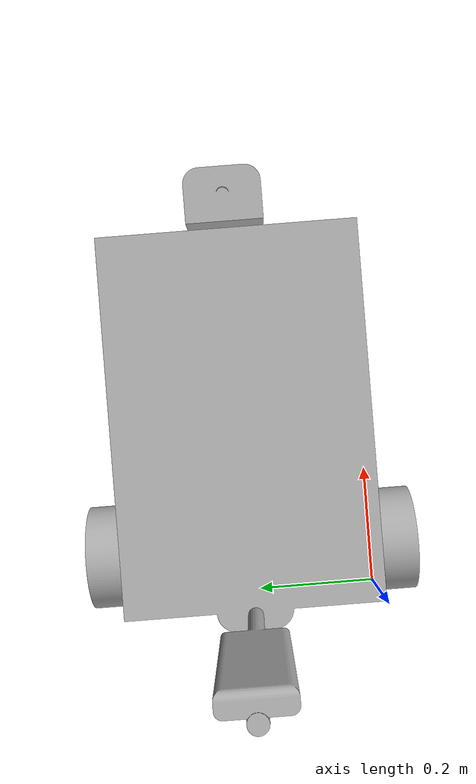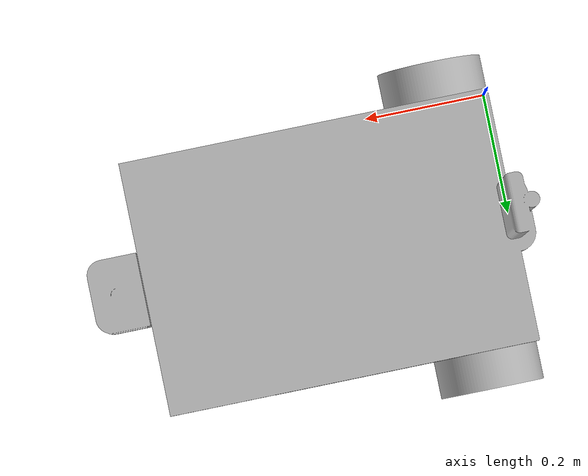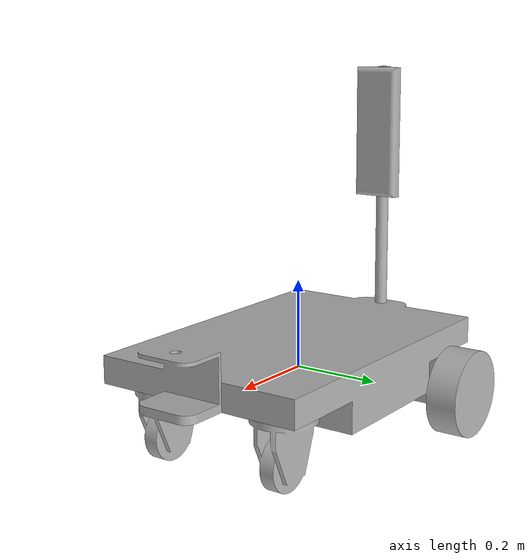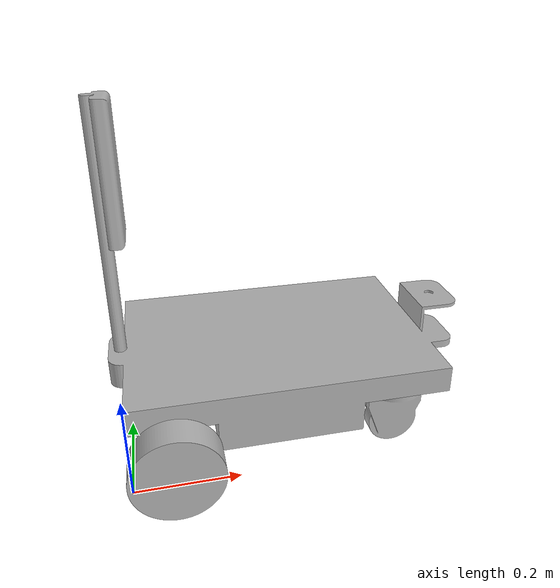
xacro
<?xml version="1.0"?>
<robot xmlns:xacro="http://www.ros.org/wiki/xacro" >

    <xacro:include filename="$(find agv_lince)/description/robot.trans" />
    <xacro:include filename="$(find agv_lince)/description/robot.gazebo" />

    <!-- MATERIALS -->
    <material name="silver">
        <color rgba="0.700 0.700 0.700 1.000"/>
    </material>

    <!-- BASE LINK -->
    <link name="base_link">

    </link>

    <!-- CHASSIS LINK -->
    <joint name="chassi_joint" type="fixed">
        <origin rpy="0 0 0" xyz="0 0 0"/>
        <parent link="base_link"/>
        <child link="chassi"/>
    </joint>

    <link name="chassi">
        <inertial>
            <origin xyz="0.26852392239431533 0.20950930054137695 0.1415018788660424" rpy="0 0 0"/>
            <mass value="196.71182920620697"/>
            <inertia ixx="4.100554" iyy="6.971657" izz="8.324299" ixy="0.000441" iyz="-0.000438" ixz="0.423937"/>
        </inertial>
        <visual>
            <origin xyz="0 0 0" rpy="0 0 0"/>
            <geometry>
                <mesh filename="file://$(find agv_lince)/meshes/chassi.stl" scale="0.001 0.001 0.001"/>
            </geometry>
            <material name="silver"/>
        </visual>
        <collision>
            <origin xyz="0 0 0" rpy="0 0 0"/>
            <geometry>
                <mesh filename="file://$(find agv_lince)/meshes/chassi.stl" scale="0.001 0.001 0.001"/>
            </geometry>
        </collision>
    </link>

    <!-- Left Caster -->
    <joint name="left_caster_joint" type="fixed">
        <origin xyz="0.5255 0.336269 0.1322" rpy="0 0 0"/>
        <parent link="chassi"/>
        <child link="left_caster"/>
    </joint>

    <link name="left_caster">
        <inertial>
            <origin xyz="0.0002703596792763552 2.5251487542454765e-05 -0.06165617323973693" rpy="0 0 0"/>
            <mass value="5.442426439867197"/>
            <inertia ixx="0.013498" iyy="0.015226" izz="0.00705" ixy="-1e-06" iyz="1e-05" ixz="6.6e-05"/>
        </inertial>
        <visual>
            <origin xyz="-0.5255 -0.336269 -0.1322" rpy="0 0 0"/>
            <geometry>
                <mesh filename="file://$(find agv_lince)/meshes/left_caster_1.stl" scale="0.001 0.001 0.001"/>
            </geometry>
            <material name="silver"/>
        </visual>
        <collision>
            <origin xyz="-0.5255 -0.336269 -0.1322" rpy="0 0 0"/>
            <geometry>
                <mesh filename="file://$(find agv_lince)/meshes/left_caster_1.stl" scale="0.001 0.001 0.001"/>
            </geometry>
        </collision>
    </link>

    <!-- Right Caster -->
    <joint name="right_caster_joint" type="fixed">
        <origin xyz="0.5255 0.075954 0.1322" rpy="0 0 0"/>
        <parent link="chassi"/>
        <child link="right_caster"/>
    </joint>

    <link name="right_caster">
        <inertial>
            <origin xyz="0.00027035967927580007 0.00033953726364627235 -0.06165617323973689" rpy="0 0 0"/>
                <mass value="5.442426439867197"/>
            <inertia ixx="0.013498" iyy="0.015226" izz="0.00705" ixy="-1e-06" iyz="1e-05" ixz="6.6e-05"/>
        </inertial>
        <visual>
            <origin xyz="-0.5255 -0.075954 -0.1322" rpy="0 0 0"/>
            <geometry>
                <mesh filename="file://$(find agv_lince)/meshes/right_caster_3.stl" scale="0.001 0.001 0.001"/>
            </geometry>
            <material name="silver"/>
        </visual>
        <collision>
            <origin xyz="-0.5255 -0.075954 -0.1322" rpy="0 0 0"/>
            <geometry>
                <mesh filename="file://$(find agv_lince)/meshes/right_caster_3.stl" scale="0.001 0.001 0.001"/>
            </geometry>
        </collision>
    </link>

    <!-- Left Wheel -->
    <joint name="left_wheel_joint" type="continuous">
        <origin xyz="0.086098 0.414 0.0522" rpy="0 0 0"/>
        <parent link="chassi"/>
        <child link="left_wheel"/>
        <axis xyz="0.0 1.0 0.0"/>
    </joint>

    <link name="left_wheel">
    <inertial>
        <origin xyz="-2.7028745609725124e-07 0.03596400994364629 -6.938893903907228e-18" rpy="0 0 0"/>
        <mass value="11.320743431486168"/>
        <inertia ixx="0.024546" iyy="0.04182" izz="0.024546" ixy="-0.0" iyz="-0.0" ixz="0.0"/>
    </inertial>
    <visual>
        <origin xyz="-0.086098 -0.414 -0.0522" rpy="0 0 0"/>
        <geometry>
            <mesh filename="file://$(find agv_lince)/meshes/left_wheel_1.stl" scale="0.001 0.001 0.001"/>
        </geometry>
        <material name="silver"/>
    </visual>
    <collision>
        <origin xyz="-0.086098 -0.414 -0.0522" rpy="0 0 0"/>
        <geometry>
            <mesh filename="file://$(find agv_lince)/meshes/left_wheel_1.stl" scale="0.001 0.001 0.001"/>
        </geometry>
    </collision>
    </link>

    <!-- Right Wheel -->
    <joint name="right_wheel_joint" type="continuous">
        <origin xyz="0.082222 0.005 0.066" rpy="0 0 0"/>
        <parent link="chassi"/>
        <child link="right_wheel"/>
        <axis xyz="0.0 1.0 0.0"/>
    </joint>

    <link name="right_wheel">
    <inertial>
        <origin xyz="-1.1151555552590953e-07 -0.03596400940058405 0.0" rpy="0 0 0"/>
        <mass value="11.32074361520196"/>
        <inertia ixx="0.024546" iyy="0.04182" izz="0.024546" ixy="-0.0" iyz="-0.0" ixz="0.0"/>
    </inertial>
    <visual>
        <origin xyz="-0.082222 -0.005 -0.066" rpy="0 0 0"/>
        <geometry>
            <mesh filename="file://$(find agv_lince)/meshes/right_wheel_1.stl" scale="0.001 0.001 0.001"/>
        </geometry>
        <material name="silver"/>
    </visual>
    <collision>
        <origin xyz="-0.082222 -0.005 -0.066" rpy="0 0 0"/>
        <geometry>
            <mesh filename="file://$(find agv_lince)/meshes/right_wheel_1.stl" scale="0.001 0.001 0.001"/>
        </geometry>
    </collision>
    </link>

    <!-- Camera -->

</robot>

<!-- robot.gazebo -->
<robot xmlns:xacro="http://www.ros.org/wiki/xacro" >

<xacro:property name="body_color" value="Gazebo/Silver" />

    <gazebo>
        <plugin name="control" filename="libgazebo_ros_control.so"/>
    </gazebo>

    <gazebo reference="chassi">
        <material>${body_color}</material>
    </gazebo>

    <gazebo reference="right_wheel">
        <material>${body_color}</material>
    </gazebo>

    <gazebo reference="left_wheel">
        <material>${body_color}</material>
    </gazebo>

    <gazebo reference="left_caster">
        <material>${body_color}</material>
        <mu1>0.001</mu1>
        <mu2>0.001</mu2>
    </gazebo>

    <gazebo reference="right_caster">
        <material>${body_color}</material>
        <mu1>0.001</mu1>
        <mu2>0.001</mu2>
    </gazebo>

    <gazebo reference="camera_1">
        <material>${body_color}</material>
    </gazebo>

</robot>
